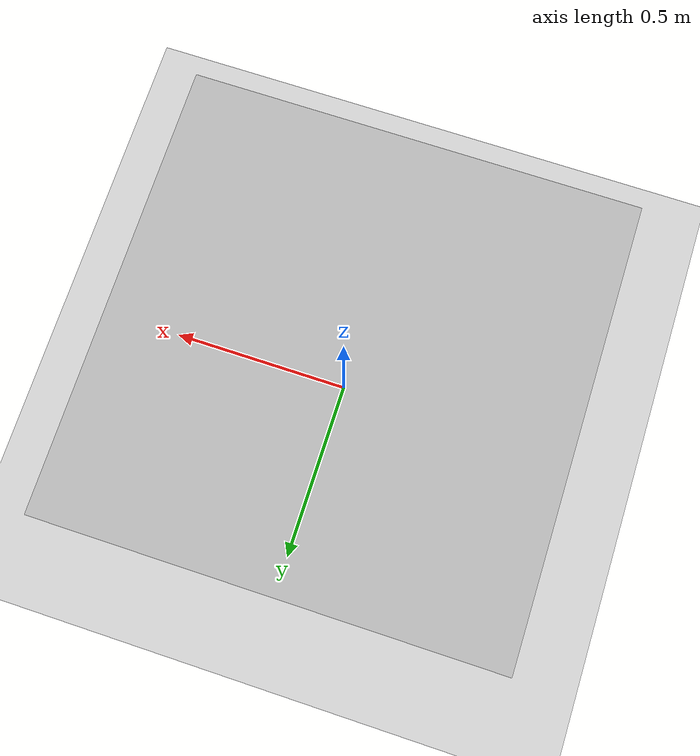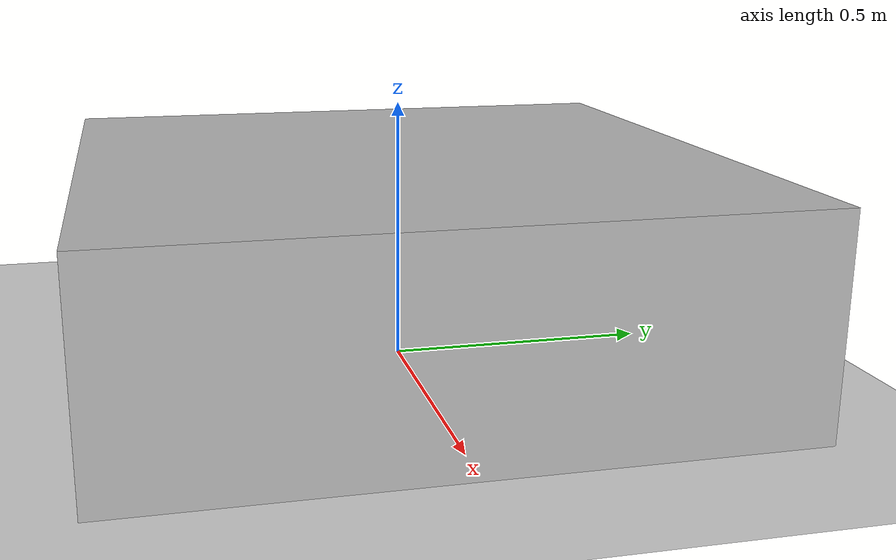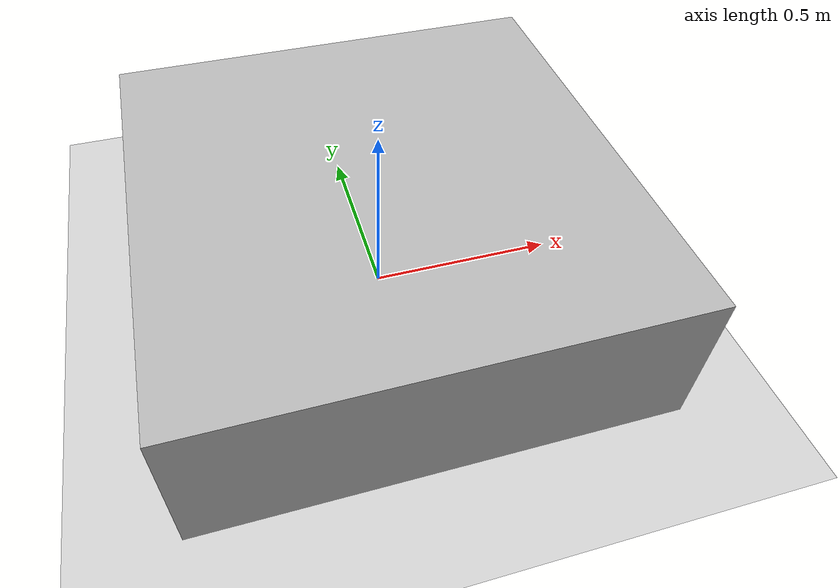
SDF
<?xml version="1.0" ?>
<sdf version="1.9">
  <world name="ur5e_world">

    <!-- Physics                                                   -->

    <physics name="default_physics" type="ode">
      <max_step_size>0.001</max_step_size>
      <real_time_factor>1.0</real_time_factor>
      <real_time_update_rate>1000</real_time_update_rate>
    </physics>

    <!-- Gravity -->
    <gravity>0 0 -9.81</gravity>

    <!-- Lighting                                                  -->

    <!-- Sun / directional light -->
    <light name="sun" type="directional">
      <cast_shadows>true</cast_shadows>
      <pose>0 0 10 0 0 0</pose>
      <diffuse>0.8 0.8 0.8 1</diffuse>
      <specular>0.2 0.2 0.2 1</specular>
      <direction>-0.3 0.2 -1.0</direction>
    </light>

    <!-- Ground Plane                                               -->

    <model name="ground_plane">
      <static>true</static>

      <link name="link">

        <collision name="collision">
          <geometry>
            <plane>
              <normal>0 0 1</normal>
              <size>20 20</size>
            </plane>
          </geometry>
        </collision>

        <visual name="visual">
          <geometry>
            <plane>
              <normal>0 0 1</normal>
              <size>20 20</size>
            </plane>
          </geometry>
        </visual>

      </link>
    </model>

    <!-- Robot Platform / Table                                     -->

    <model name="robot_platform">
  <static>true</static>

  <!-- Platform center is 0.20 m above the ground.
       Height = 0.40 m, so top surface = 0.40 m. -->
  <pose>0 0 0.20 0 0 0</pose>

  <link name="platform_link">

    <collision name="collision">
      <geometry>
        <box>
          <size>1.2 1.2 0.4</size>
        </box>
      </geometry>
    </collision>

    <visual name="visual">
      <geometry>
        <box>
          <size>1.2 1.2 0.4</size>
        </box>
      </geometry>

      <material>
        <ambient>0.6 0.6 0.6 1</ambient>
        <diffuse>0.7 0.7 0.7 1</diffuse>
        <specular>0.2 0.2 0.2 1</specular>
      </material>
    </visual>

  </link>
</model>

    <!-- Gazebo Sim Systems                                        -->

    <!-- Physics system -->
    <plugin
      filename="gz-sim-physics-system"
      name="gz::sim::systems::Physics"/>

    <!-- User commands -->
    <plugin
      filename="gz-sim-user-commands-system"
      name="gz::sim::systems::UserCommands"/>

    <!-- Scene broadcaster -->
    <plugin
      filename="gz-sim-scene-broadcaster-system"
      name="gz::sim::systems::SceneBroadcaster"/>

  </world>
</sdf>
